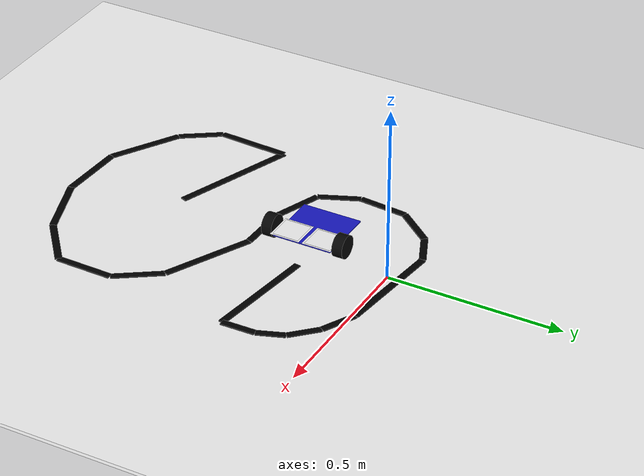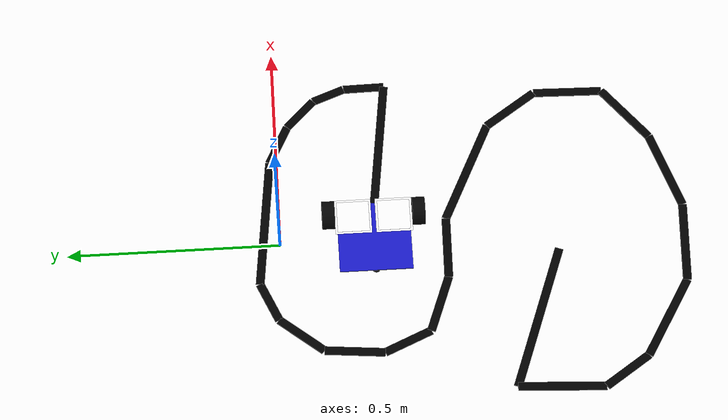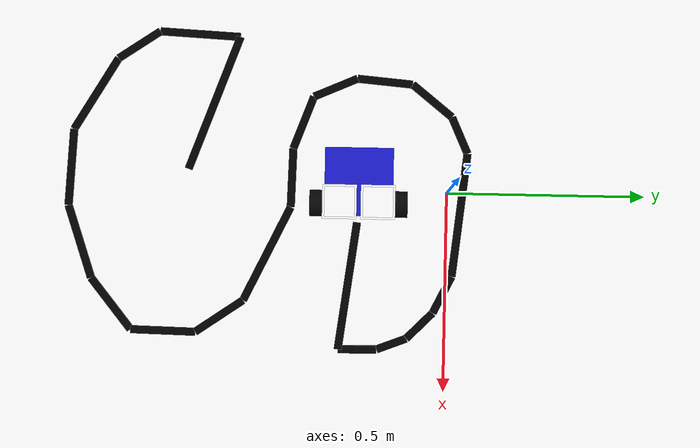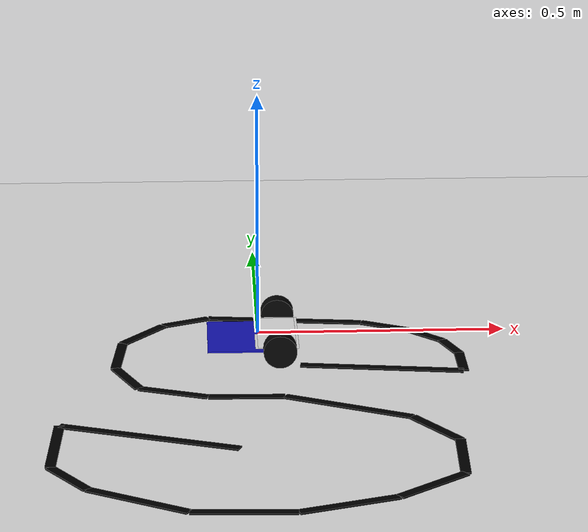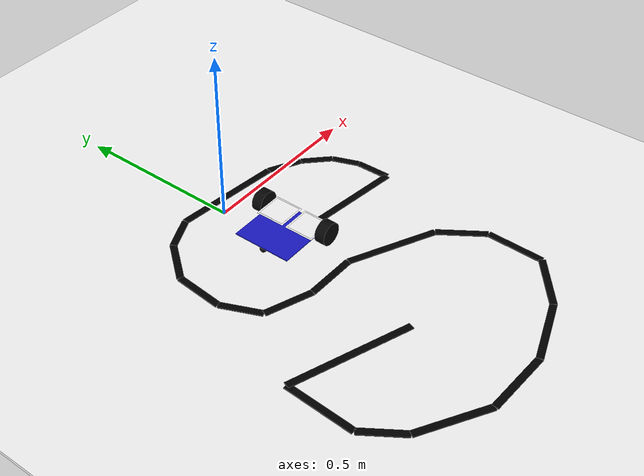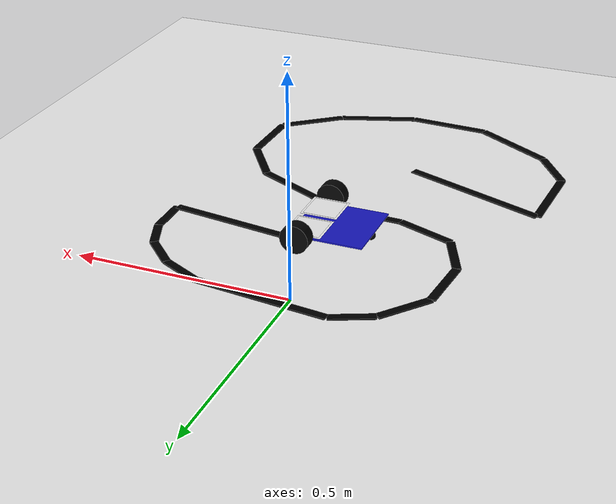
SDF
<?xml version="1.0" ?>
<sdf version="1.9">
  <world name="lane_world">

    <physics name="1ms" type="ignored">
      <max_step_size>0.001</max_step_size>
      <real_time_factor>1.0</real_time_factor>
    </physics>

    <plugin
      filename="gz-sim-physics-system"
      name="gz::sim::systems::Physics">
    </plugin>

    <plugin
      filename="gz-sim-user-commands-system"
      name="gz::sim::systems::UserCommands">
    </plugin>

    <plugin
      filename="gz-sim-scene-broadcaster-system"
      name="gz::sim::systems::SceneBroadcaster">
    </plugin>

    <plugin
      filename="gz-sim-sensors-system"
      name="gz::sim::systems::Sensors">
      <render_engine>ogre2</render_engine>
    </plugin>

    <!-- Light -->
    <light name="sun" type="directional">
      <pose>0 0 10 0 0 0</pose>
      <cast_shadows>false</cast_shadows>
      <direction>0 0 -1</direction>
      <diffuse>1 1 1 1</diffuse>
      <specular>0.2 0.2 0.2 1</specular>
    </light>

    <!-- Ground -->
    <model name="ground_plane">
      <static>true</static>
      <link name="link">
        <collision name="collision">
          <geometry>
            <box>
              <size>8 8 0.01</size>
            </box>
          </geometry>
        </collision>

        <visual name="visual">
          <geometry>
            <box>
              <size>8 8 0.01</size>
            </box>
          </geometry>
          <material>
            <ambient>1 1 1 1</ambient>
            <diffuse>1 1 1 1</diffuse>
          </material>
        </visual>
      </link>
    </model>

    <!-- =========================
         ImageJ-based S-shaped lane
         Rotated 90 deg clockwise
         line width = 0.02 m
         ========================= -->

    <!-- =========================
         ImageJ-based S-shaped lane
         Rotated 90 deg clockwise + horizontally flipped
         line width = 0.02 m
         ========================= -->

    <!-- =========================
         ImageJ-based S-shaped lane
         Rotated 90 deg clockwise + horizontally flipped
         line width = 0.02 m
         ========================= -->

    <model name="lane_imgj_01">
      <static>true</static>
      <pose>-0.2181 -0.5895 0.012 0 0 2.7903</pose>
      <link name="link">
        <visual name="visual">
          <geometry><box><size>0.3592 0.0200 0.003</size></box></geometry>
          <material><ambient>0 0 0 1</ambient><diffuse>0 0 0 1</diffuse></material>
        </visual>
      </link>
    </model>

    <model name="lane_imgj_02">
      <static>true</static>
      <pose>-0.3920 -0.6292 0.012 0 0 -1.6229</pose>
      <link name="link">
        <visual name="visual">
          <geometry><box><size>0.2033 0.0200 0.003</size></box></geometry>
          <material><ambient>0 0 0 1</ambient><diffuse>0 0 0 1</diffuse></material>
        </visual>
      </link>
    </model>

    <model name="lane_imgj_03">
      <static>true</static>
      <pose>-0.3619 -0.7828 0.012 0 0 -0.9750</pose>
      <link name="link">
        <visual name="visual">
          <geometry><box><size>0.1259 0.0200 0.003</size></box></geometry>
          <material><ambient>0 0 0 1</ambient><diffuse>0 0 0 1</diffuse></material>
        </visual>
      </link>
    </model>

    <model name="lane_imgj_04">
      <static>true</static>
      <pose>-0.2357 -0.8887 0.012 0 0 -0.5347</pose>
      <link name="link">
        <visual name="visual">
          <geometry><box><size>0.2114 0.0200 0.003</size></box></geometry>
          <material><ambient>0 0 0 1</ambient><diffuse>0 0 0 1</diffuse></material>
        </visual>
      </link>
    </model>

    <model name="lane_imgj_05">
      <static>true</static>
      <pose>-0.0486 -0.9470 0.012 0 0 -0.0458</pose>
      <link name="link">
        <visual name="visual">
          <geometry><box><size>0.1927 0.0200 0.003</size></box></geometry>
          <material><ambient>0 0 0 1</ambient><diffuse>0 0 0 1</diffuse></material>
        </visual>
      </link>
    </model>

    <model name="lane_imgj_06">
      <static>true</static>
      <pose>0.1386 -0.9205 0.012 0 0 0.3277</pose>
      <link name="link">
        <visual name="visual">
          <geometry><box><size>0.1921 0.0200 0.003</size></box></geometry>
          <material><ambient>0 0 0 1</ambient><diffuse>0 0 0 1</diffuse></material>
        </visual>
      </link>
    </model>

    <model name="lane_imgj_07">
      <static>true</static>
      <pose>0.2931 -0.8384 0.012 0 0 0.6781</pose>
      <link name="link">
        <visual name="visual">
          <geometry><box><size>0.1632 0.0200 0.003</size></box></geometry>
          <material><ambient>0 0 0 1</ambient><diffuse>0 0 0 1</diffuse></material>
        </visual>
      </link>
    </model>

    <model name="lane_imgj_08">
      <static>true</static>
      <pose>0.3584 -0.7060 0.012 0 0 1.5491</pose>
      <link name="link">
        <visual name="visual">
          <geometry><box><size>0.1625 0.0200 0.003</size></box></geometry>
          <material><ambient>0 0 0 1</ambient><diffuse>0 0 0 1</diffuse></material>
        </visual>
      </link>
    </model>

    <model name="lane_imgj_09">
      <static>true</static>
      <pose>0.3196 -0.5656 0.012 0 0 2.1725</pose>
      <link name="link">
        <visual name="visual">
          <geometry><box><size>0.1435 0.0200 0.003</size></box></geometry>
          <material><ambient>0 0 0 1</ambient><diffuse>0 0 0 1</diffuse></material>
        </visual>
      </link>
    </model>

    <model name="lane_imgj_10">
      <static>true</static>
      <pose>0.1607 -0.4491 0.012 0 0 2.6900</pose>
      <link name="link">
        <visual name="visual">
          <geometry><box><size>0.2630 0.0200 0.003</size></box></geometry>
          <material><ambient>0 0 0 1</ambient><diffuse>0 0 0 1</diffuse></material>
        </visual>
      </link>
    </model>

    <model name="lane_imgj_11">
      <static>true</static>
      <pose>-0.0318 -0.3900 0.012 0 0 3.1178</pose>
      <link name="link">
        <visual name="visual">
          <geometry><box><size>0.1484 0.0200 0.003</size></box></geometry>
          <material><ambient>0 0 0 1</ambient><diffuse>0 0 0 1</diffuse></material>
        </visual>
      </link>
    </model>

    <model name="lane_imgj_12">
      <static>true</static>
      <pose>-0.1721 -0.3635 0.012 0 0 2.7843</pose>
      <link name="link">
        <visual name="visual">
          <geometry><box><size>0.1413 0.0200 0.003</size></box></geometry>
          <material><ambient>0 0 0 1</ambient><diffuse>0 0 0 1</diffuse></material>
        </visual>
      </link>
    </model>

    <model name="lane_imgj_13">
      <static>true</static>
      <pose>-0.2622 -0.2840 0.012 0 0 1.9815</pose>
      <link name="link">
        <visual name="visual">
          <geometry><box><size>0.1194 0.0200 0.003</size></box></geometry>
          <material><ambient>0 0 0 1</ambient><diffuse>0 0 0 1</diffuse></material>
        </visual>
      </link>
    </model>

    <model name="lane_imgj_14">
      <static>true</static>
      <pose>-0.2798 -0.1596 0.012 0 0 1.4824</pose>
      <link name="link">
        <visual name="visual">
          <geometry><box><size>0.1400 0.0200 0.003</size></box></geometry>
          <material><ambient>0 0 0 1</ambient><diffuse>0 0 0 1</diffuse></material>
        </visual>
      </link>
    </model>

    <model name="lane_imgj_15">
      <static>true</static>
      <pose>-0.2331 -0.0395 0.012 0 0 0.8918</pose>
      <link name="link">
        <visual name="visual">
          <geometry><box><size>0.1293 0.0200 0.003</size></box></geometry>
          <material><ambient>0 0 0 1</ambient><diffuse>0 0 0 1</diffuse></material>
        </visual>
      </link>
    </model>

    <model name="lane_imgj_16">
      <static>true</static>
      <pose>-0.1465 0.0311 0.012 0 0 0.4164</pose>
      <link name="link">
        <visual name="visual">
          <geometry><box><size>0.1004 0.0200 0.003</size></box></geometry>
          <material><ambient>0 0 0 1</ambient><diffuse>0 0 0 1</diffuse></material>
        </visual>
      </link>
    </model>

    <model name="lane_imgj_17">
      <static>true</static>
      <pose>0.0547 0.0338 0.012 0 0 -0.1132</pose>
      <link name="link">
        <visual name="visual">
          <geometry><box><size>0.3127 0.0200 0.003</size></box></geometry>
          <material><ambient>0 0 0 1</ambient><diffuse>0 0 0 1</diffuse></material>
        </visual>
      </link>
    </model>

    <model name="lane_imgj_18">
      <static>true</static>
      <pose>0.2560 -0.0068 0.012 0 0 -0.4637</pose>
      <link name="link">
        <visual name="visual">
          <geometry><box><size>0.1027 0.0200 0.003</size></box></geometry>
          <material><ambient>0 0 0 1</ambient><diffuse>0 0 0 1</diffuse></material>
        </visual>
      </link>
    </model>

    <model name="lane_imgj_19">
      <static>true</static>
      <pose>0.3346 -0.0625 0.012 0 0 -0.7854</pose>
      <link name="link">
        <visual name="visual">
          <geometry><box><size>0.0924 0.0200 0.003</size></box></geometry>
          <material><ambient>0 0 0 1</ambient><diffuse>0 0 0 1</diffuse></material>
        </visual>
      </link>
    </model>

    <model name="lane_imgj_20">
      <static>true</static>
      <pose>0.3814 -0.1322 0.012 0 0 -1.2068</pose>
      <link name="link">
        <visual name="visual">
          <geometry><box><size>0.0794 0.0200 0.003</size></box></geometry>
          <material><ambient>0 0 0 1</ambient><diffuse>0 0 0 1</diffuse></material>
        </visual>
      </link>
    </model>

    <model name="lane_imgj_21">
      <static>true</static>
      <pose>0.3964 -0.2178 0.012 0 0 -1.5526</pose>
      <link name="link">
        <visual name="visual">
          <geometry><box><size>0.0971 0.0200 0.003</size></box></geometry>
          <material><ambient>0 0 0 1</ambient><diffuse>0 0 0 1</diffuse></material>
        </visual>
      </link>
    </model>

    <model name="lane_imgj_22">
      <static>true</static>
      <pose>0.2375 -0.2452 0.012 0 0 3.0098</pose>
      <link name="link">
        <visual name="visual">
          <geometry><box><size>0.3224 0.0200 0.003</size></box></geometry>
          <material><ambient>0 0 0 1</ambient><diffuse>0 0 0 1</diffuse></material>
        </visual>
      </link>
    </model>

    <!-- Robot -->
    <include>
      <uri>model://lane_bot</uri>
      <pose>-0.02 -0.22 0.05 0 0 0</pose>
    </include>

    <!-- Overhead camera -->
    <!-- Overhead camera -->
    <model name="overhead_camera_model">
      <static>true</static>
      <pose>-0.05 -0.4 2.0 0 1.5708 0</pose>

      <link name="overhead_camera_link">
        <sensor name="overhead_camera" type="camera">
          <always_on>true</always_on>
          <update_rate>30</update_rate>
          <visualize>true</visualize>
          <topic>/image_raw</topic>

          <camera>
            <horizontal_fov>0.7175</horizontal_fov>
            <image>
              <width>960</width>
              <height>720</height>
              <format>R8G8B8</format>
            </image>
            <clip>
              <near>0.1</near>
              <far>10.0</far>
            </clip>
          </camera>
        </sensor>
      </link>
    </model>

  </world>
</sdf>

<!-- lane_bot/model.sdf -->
<sdf version="1.9">
  <model name="lane_bot">
    <!-- 모델 자체에는 z offset을 주지 않음 -->
    <pose>0 0 0 0 0 0</pose>
    <static>false</static>

    <!-- Base body -->
    <link name="base_link">
      <!-- 차체 바닥이 지면에서 2 cm 위.
           차체 두께 0.003 m이므로 center z = 0.020 + 0.0015 = 0.0215 -->
      <pose>0 0 0.0215 0 0 0</pose>

      <inertial>
        <pose>0 0 -0.005 0 0 0</pose>
        <mass>1.0</mass>
        <inertia>
          <ixx>0.01</ixx>
          <iyy>0.01</iyy>
          <izz>0.02</izz>
          <ixy>0</ixy>
          <ixz>0</ixz>
          <iyz>0</iyz>
        </inertia>
      </inertial>

      <collision name="base_collision">
        <geometry>
          <box>
            <size>0.17 0.17 0.003</size>
          </box>
        </geometry>
      </collision>

      <visual name="base_visual">
        <geometry>
          <box>
            <size>0.17 0.17 0.003</size>
          </box>
        </geometry>
        <material>
          <ambient>0.1 0.1 0.8 1</ambient>
          <diffuse>0.1 0.1 0.8 1</diffuse>
        </material>
      </visual>

      <visual name="aruco_10_white_plate">
        <pose>0.050 0.0475 0.0075 0 0 0</pose>
        <geometry>
          <plane>
            <normal>0 0 1</normal>
            <size>0.085 0.085</size>
          </plane>
        </geometry>
        <material>
          <ambient>1 1 1 1</ambient>
          <diffuse>1 1 1 1</diffuse>
        </material>
      </visual>

      <!-- ArUco marker 10 -->
      <!-- marker center는 기존이 맞다고 했으므로 x=0.055 유지 -->
      <visual name="aruco_10_visual">
        <pose>0.050 0.0475 0.008 0 0 0</pose>
        <geometry>
          <plane>
            <normal>0 0 1</normal>
            <size>0.075 0.075</size>
          </plane>
        </geometry>
        <material>
          <ambient>1 1 1 1</ambient>
          <diffuse>1 1 1 1</diffuse>
          <pbr>
            <metal>
              <albedo_map>materials/textures/aruco_10.png</albedo_map>
            </metal>
          </pbr>
        </material>
      </visual>

      <visual name="aruco_15_white_plate">
        <pose>0.050 -0.0475 0.0075 0 0 0</pose>
        <geometry>
          <plane>
            <normal>0 0 1</normal>
            <size>0.085 0.085</size>
          </plane>
        </geometry>
        <material>
          <ambient>1 1 1 1</ambient>
          <diffuse>1 1 1 1</diffuse>
        </material>
      </visual>

      <!-- ArUco marker 15 -->
      <visual name="aruco_15_visual">
        <pose>0.050 -0.0475 0.008 0 0 0</pose>
        <geometry>
          <plane>
            <normal>0 0 1</normal>
            <size>0.075 0.075</size>
          </plane>
        </geometry>
        <material>
          <ambient>1 1 1 1</ambient>
          <diffuse>1 1 1 1</diffuse>
          <pbr>
            <metal>
              <albedo_map>materials/textures/aruco_15.png</albedo_map>
            </metal>
          </pbr>
        </material>
      </visual>
    </link>

    <!-- Left front wheel -->
    <!-- 바퀴 지름 6.5 cm → radius 0.0325 m.
         바퀴 축 x는 marker 중심선과 일치해야 하므로 x=0.055 -->
    <link name="left_wheel">
      <pose>0.055 0.105 0.0325 1.5708 0 0</pose>

      <inertial>
        <mass>0.1</mass>
        <inertia>
          <ixx>0.0001</ixx>
          <iyy>0.0001</iyy>
          <izz>0.0001</izz>
          <ixy>0</ixy>
          <ixz>0</ixz>
          <iyz>0</iyz>
        </inertia>
      </inertial>

      <collision name="left_wheel_collision">
        <geometry>
          <cylinder>
            <radius>0.0325</radius>
            <length>0.03</length>
          </cylinder>
        </geometry>
        <surface>
          <friction>
            <ode>
              <mu>1.2</mu>
              <mu2>1.2</mu2>
            </ode>
          </friction>
          <contact>
            <ode>
              <kp>100000</kp>
              <kd>10</kd>
              <max_vel>0.1</max_vel>
              <min_depth>0.001</min_depth>
            </ode>
          </contact>
        </surface>
      </collision>

      <visual name="left_wheel_visual">
        <geometry>
          <cylinder>
            <radius>0.0325</radius>
            <length>0.03</length>
          </cylinder>
        </geometry>
        <material>
          <ambient>0.02 0.02 0.02 1</ambient>
          <diffuse>0.02 0.02 0.02 1</diffuse>
        </material>
      </visual>
    </link>

    <!-- Right front wheel -->
    <link name="right_wheel">
      <pose>0.055 -0.105 0.0325 1.5708 0 0</pose>

      <inertial>
        <mass>0.1</mass>
        <inertia>
          <ixx>0.0001</ixx>
          <iyy>0.0001</iyy>
          <izz>0.0001</izz>
          <ixy>0</ixy>
          <ixz>0</ixz>
          <iyz>0</iyz>
        </inertia>
      </inertial>

      <collision name="right_wheel_collision">
        <geometry>
          <cylinder>
            <radius>0.0325</radius>
            <length>0.03</length>
          </cylinder>
        </geometry>
        <surface>
          <friction>
            <ode>
              <mu>1.2</mu>
              <mu2>1.2</mu2>
            </ode>
          </friction>
          <contact>
            <ode>
              <kp>100000</kp>
              <kd>10</kd>
              <max_vel>0.1</max_vel>
              <min_depth>0.001</min_depth>
            </ode>
          </contact>
        </surface>
      </collision>

      <visual name="right_wheel_visual">
        <geometry>
          <cylinder>
            <radius>0.0325</radius>
            <length>0.03</length>
          </cylinder>
        </geometry>
        <material>
          <ambient>0.02 0.02 0.02 1</ambient>
          <diffuse>0.02 0.02 0.02 1</diffuse>
        </material>
      </visual>
    </link>

    <!-- Rear ball caster -->
    <!-- 뒤쪽 볼. 차체 바닥 offset 2 cm 조건에 맞춰 radius=0.02, center z=0.02 -->
    <link name="caster">
      <pose>-0.075 0 0.010 0 0 0</pose>

      <inertial>
        <mass>0.01</mass>
        <inertia>
          <ixx>0.00002</ixx>
          <iyy>0.00002</iyy>
          <izz>0.00002</izz>
          <ixy>0</ixy>
          <ixz>0</ixz>
          <iyz>0</iyz>
        </inertia>
      </inertial>

      <collision name="caster_collision">
        <geometry>
          <sphere>
            <radius>0.01</radius>
          </sphere>
        </geometry>
        <surface>
          <friction>
            <ode>
              <mu>0.05</mu>
              <mu2>0.05</mu2>
            </ode>
          </friction>
          <contact>
            <ode>
              <kp>100000</kp>
              <kd>10</kd>
              <max_vel>0.1</max_vel>
              <min_depth>0.001</min_depth>
            </ode>
          </contact>
        </surface>
      </collision>

      <visual name="caster_visual">
        <geometry>
          <sphere>
            <radius>0.010</radius>
          </sphere>
        </geometry>
        <material>
          <ambient>0.05 0.05 0.05 1</ambient>
          <diffuse>0.05 0.05 0.05 1</diffuse>
        </material>
      </visual>
    </link>

    <!-- Joints -->
    <joint name="left_wheel_joint" type="revolute">
      <parent>base_link</parent>
      <child>left_wheel</child>
      <axis>
        <xyz>0 0 -1</xyz>
        <dynamics>
          <damping>0.05</damping>
          <friction>0.01</friction>
        </dynamics>
        <limit>
          <lower>-1e16</lower>
          <upper>1e16</upper>
        </limit>
      </axis>
    </joint>

    <joint name="right_wheel_joint" type="revolute">
      <parent>base_link</parent>
      <child>right_wheel</child>
      <axis>
        <xyz>0 0 -1</xyz>
        <dynamics>
          <damping>0.05</damping>
          <friction>0.01</friction>
        </dynamics>
        <limit>
          <lower>-1e16</lower>
          <upper>1e16</upper>
        </limit>
      </axis>
    </joint>

    <joint name="caster_joint" type="fixed">
      <parent>base_link</parent>
      <child>caster</child>
    </joint>

    <!-- Diff drive plugin -->
    <plugin
      filename="gz-sim-diff-drive-system"
      name="gz::sim::systems::DiffDrive">

      <left_joint>left_wheel_joint</left_joint>
      <right_joint>right_wheel_joint</right_joint>

      <wheel_separation>0.21</wheel_separation>
      <wheel_radius>0.0325</wheel_radius>

      <topic>/cmd_vel</topic>
      <odom_topic>/odom</odom_topic>

      <max_linear_acceleration>1.0</max_linear_acceleration>
      <min_linear_acceleration>-1.0</min_linear_acceleration>
      <max_angular_acceleration>2.0</max_angular_acceleration>
      <min_angular_acceleration>-2.0</min_angular_acceleration>
    </plugin>

  </model>
</sdf>
